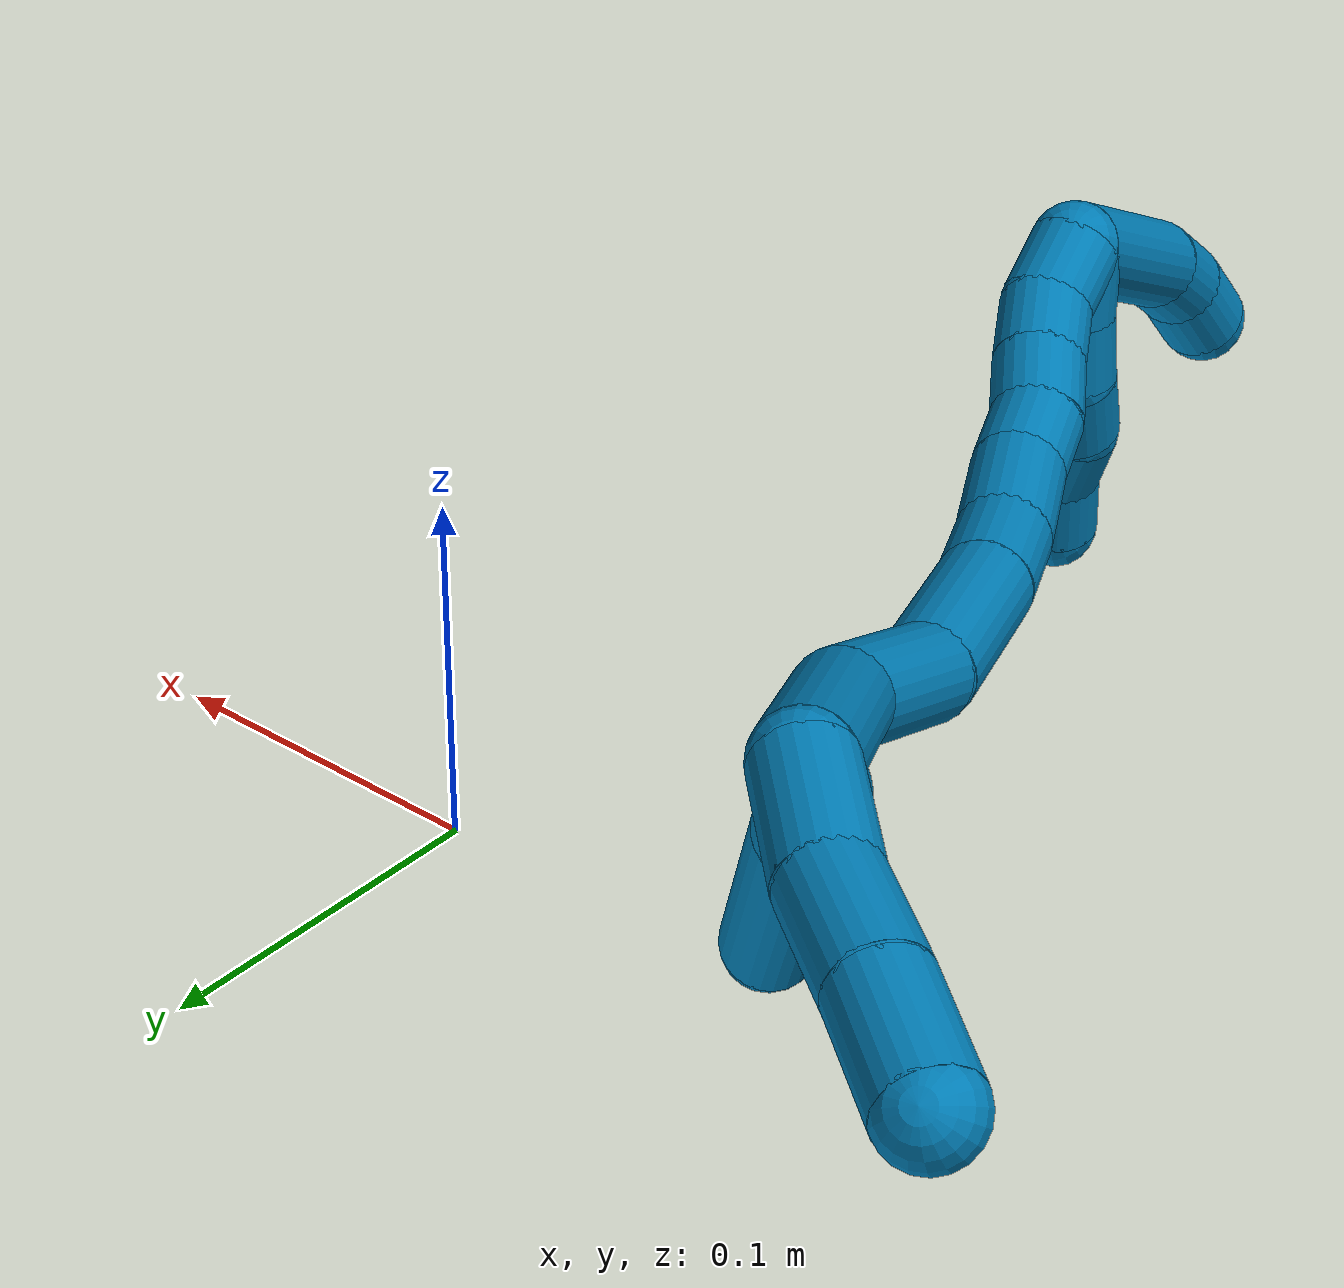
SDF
<sdf version="1.7">
 <world name="default">
  <model name="9">
   <static>0</static>
   <link name="9">
    <collision name="collision-cylinder-e_1_2_8">
     <pose>0.001467 0.00166 -0.017837 -3.04879 0.081726 -1.44385</pose>
     <geometry><cylinder><radius>0.0125</radius><length>0.035947</length></cylinder></geometry>
     <surface>
      <friction><ode><mu>1.16</mu><mu2>1.16</mu2><slip1>0</slip1><slip2>0</slip2></ode></friction>
      <contact><ode><kp>1e+06</kp><kd>1</kd><max_vel>0</max_vel><min_depth>0.001</min_depth></ode></contact>
     </surface>
    </collision>
    <visual name="visual-cylinder-e_1_2_8">
     <pose>0.001467 0.00166 -0.017837 -3.04879 0.081726 -1.44385</pose>
     <geometry><cylinder><radius>0.0125</radius><length>0.035947</length></cylinder></geometry>
     <material><ambient>0 0.490196 0.709804 1</ambient></material>
    </visual>
    <collision name="collision-cylinder-e_2_8_9">
     <pose>0.004566 0.007038 -0.047316 -2.83253 0.132691 -0.806336</pose>
     <geometry><cylinder><radius>0.0125</radius><length>0.024661</length></cylinder></geometry>
     <surface>
      <friction><ode><mu>1.16</mu><mu2>1.16</mu2><slip1>0</slip1><slip2>0</slip2></ode></friction>
      <contact><ode><kp>1e+06</kp><kd>1</kd><max_vel>0</max_vel><min_depth>0.001</min_depth></ode></contact>
     </surface>
    </collision>
    <visual name="visual-cylinder-e_2_8_9">
     <pose>0.004566 0.007038 -0.047316 -2.83253 0.132691 -0.806336</pose>
     <geometry><cylinder><radius>0.0125</radius><length>0.024661</length></cylinder></geometry>
     <material><ambient>0 0.490196 0.709804 1</ambient></material>
    </visual>
    <collision name="collision-cylinder-e_3_9_6">
     <pose>0.012491 0.024265 -0.101097 -2.83134 0.141276 -0.849771</pose>
     <geometry><cylinder><radius>0.0125</radius><length>0.089392</length></cylinder></geometry>
     <surface>
      <friction><ode><mu>1.16</mu><mu2>1.16</mu2><slip1>0</slip1><slip2>0</slip2></ode></friction>
      <contact><ode><kp>1e+06</kp><kd>1</kd><max_vel>0</max_vel><min_depth>0.001</min_depth></ode></contact>
     </surface>
    </collision>
    <visual name="visual-cylinder-e_3_9_6">
     <pose>0.012491 0.024265 -0.101097 -2.83134 0.141276 -0.849771</pose>
     <geometry><cylinder><radius>0.0125</radius><length>0.089392</length></cylinder></geometry>
     <material><ambient>0 0.490196 0.709804 1</ambient></material>
    </visual>
    <collision name="collision-cylinder-e_1_2_10">
     <pose>-0.011561 0.008721 0.009115 -0.763309 -0.741862 0.309685</pose>
     <geometry><cylinder><radius>0.0125</radius><length>0.034222</length></cylinder></geometry>
     <surface>
      <friction><ode><mu>1.16</mu><mu2>1.16</mu2><slip1>0</slip1><slip2>0</slip2></ode></friction>
      <contact><ode><kp>1e+06</kp><kd>1</kd><max_vel>0</max_vel><min_depth>0.001</min_depth></ode></contact>
     </surface>
    </collision>
    <visual name="visual-cylinder-e_1_2_10">
     <pose>-0.011561 0.008721 0.009115 -0.763309 -0.741862 0.309685</pose>
     <geometry><cylinder><radius>0.0125</radius><length>0.034222</length></cylinder></geometry>
     <material><ambient>0 0.490196 0.709804 1</ambient></material>
    </visual>
    <collision name="collision-cylinder-e_2_10_11">
     <pose>-0.035337 0.023171 0.027574 -0.550053 -0.839387 0.2505</pose>
     <geometry><cylinder><radius>0.0125</radius><length>0.032825</length></cylinder></geometry>
     <surface>
      <friction><ode><mu>1.16</mu><mu2>1.16</mu2><slip1>0</slip1><slip2>0</slip2></ode></friction>
      <contact><ode><kp>1e+06</kp><kd>1</kd><max_vel>0</max_vel><min_depth>0.001</min_depth></ode></contact>
     </surface>
    </collision>
    <visual name="visual-cylinder-e_2_10_11">
     <pose>-0.035337 0.023171 0.027574 -0.550053 -0.839387 0.2505</pose>
     <geometry><cylinder><radius>0.0125</radius><length>0.032825</length></cylinder></geometry>
     <material><ambient>0 0.490196 0.709804 1</ambient></material>
    </visual>
    <collision name="collision-cylinder-e_3_11_5">
     <pose>-0.05991 0.035568 0.045541 -0.658193 -0.848111 0.305943</pose>
     <geometry><cylinder><radius>0.0125</radius><length>0.032953</length></cylinder></geometry>
     <surface>
      <friction><ode><mu>1.16</mu><mu2>1.16</mu2><slip1>0</slip1><slip2>0</slip2></ode></friction>
      <contact><ode><kp>1e+06</kp><kd>1</kd><max_vel>0</max_vel><min_depth>0.001</min_depth></ode></contact>
     </surface>
    </collision>
    <visual name="visual-cylinder-e_3_11_5">
     <pose>-0.05991 0.035568 0.045541 -0.658193 -0.848111 0.305943</pose>
     <geometry><cylinder><radius>0.0125</radius><length>0.032953</length></cylinder></geometry>
     <material><ambient>0 0.490196 0.709804 1</ambient></material>
    </visual>
    <collision name="collision-cylinder-e_1_2_12">
     <pose>0.008474 -0.008884 -0.030909 2.86172 0.257628 1.48708</pose>
     <geometry><cylinder><radius>0.0125</radius><length>0.066517</length></cylinder></geometry>
     <surface>
      <friction><ode><mu>1.16</mu><mu2>1.16</mu2><slip1>0</slip1><slip2>0</slip2></ode></friction>
      <contact><ode><kp>1e+06</kp><kd>1</kd><max_vel>0</max_vel><min_depth>0.001</min_depth></ode></contact>
     </surface>
    </collision>
    <visual name="visual-cylinder-e_1_2_12">
     <pose>0.008474 -0.008884 -0.030909 2.86172 0.257628 1.48708</pose>
     <geometry><cylinder><radius>0.0125</radius><length>0.066517</length></cylinder></geometry>
     <material><ambient>0 0.490196 0.709804 1</ambient></material>
    </visual>
    <collision name="collision-cylinder-e_2_12_13">
     <pose>0.01554 -0.026706 -0.082003 2.72471 -0.063691 -0.298974</pose>
     <geometry><cylinder><radius>0.0125</radius><length>0.04424</length></cylinder></geometry>
     <surface>
      <friction><ode><mu>1.16</mu><mu2>1.16</mu2><slip1>0</slip1><slip2>0</slip2></ode></friction>
      <contact><ode><kp>1e+06</kp><kd>1</kd><max_vel>0</max_vel><min_depth>0.001</min_depth></ode></contact>
     </surface>
    </collision>
    <visual name="visual-cylinder-e_2_12_13">
     <pose>0.01554 -0.026706 -0.082003 2.72471 -0.063691 -0.298974</pose>
     <geometry><cylinder><radius>0.0125</radius><length>0.04424</length></cylinder></geometry>
     <material><ambient>0 0.490196 0.709804 1</ambient></material>
    </visual>
    <collision name="collision-cylinder-e_3_13_14">
     <pose>0.0193 -0.049786 -0.123057 2.54606 0.202205 0.63852</pose>
     <geometry><cylinder><radius>0.0125</radius><length>0.051467</length></cylinder></geometry>
     <surface>
      <friction><ode><mu>1.16</mu><mu2>1.16</mu2><slip1>0</slip1><slip2>0</slip2></ode></friction>
      <contact><ode><kp>1e+06</kp><kd>1</kd><max_vel>0</max_vel><min_depth>0.001</min_depth></ode></contact>
     </surface>
    </collision>
    <visual name="visual-cylinder-e_3_13_14">
     <pose>0.0193 -0.049786 -0.123057 2.54606 0.202205 0.63852</pose>
     <geometry><cylinder><radius>0.0125</radius><length>0.051467</length></cylinder></geometry>
     <material><ambient>0 0.490196 0.709804 1</ambient></material>
    </visual>
    <collision name="collision-cylinder-e_4_14_15">
     <pose>0.028498 -0.071354 -0.154178 2.51459 0.308225 0.893693</pose>
     <geometry><cylinder><radius>0.0125</radius><length>0.026572</length></cylinder></geometry>
     <surface>
      <friction><ode><mu>1.16</mu><mu2>1.16</mu2><slip1>0</slip1><slip2>0</slip2></ode></friction>
      <contact><ode><kp>1e+06</kp><kd>1</kd><max_vel>0</max_vel><min_depth>0.001</min_depth></ode></contact>
     </surface>
    </collision>
    <visual name="visual-cylinder-e_4_14_15">
     <pose>0.028498 -0.071354 -0.154178 2.51459 0.308225 0.893693</pose>
     <geometry><cylinder><radius>0.0125</radius><length>0.026572</length></cylinder></geometry>
     <material><ambient>0 0.490196 0.709804 1</ambient></material>
    </visual>
    <collision name="collision-cylinder-e_5_15_16">
     <pose>0.03833 -0.088064 -0.174358 2.38983 0.403407 0.956122</pose>
     <geometry><cylinder><radius>0.0125</radius><length>0.029554</length></cylinder></geometry>
     <surface>
      <friction><ode><mu>1.16</mu><mu2>1.16</mu2><slip1>0</slip1><slip2>0</slip2></ode></friction>
      <contact><ode><kp>1e+06</kp><kd>1</kd><max_vel>0</max_vel><min_depth>0.001</min_depth></ode></contact>
     </surface>
    </collision>
    <visual name="visual-cylinder-e_5_15_16">
     <pose>0.03833 -0.088064 -0.174358 2.38983 0.403407 0.956122</pose>
     <geometry><cylinder><radius>0.0125</radius><length>0.029554</length></cylinder></geometry>
     <material><ambient>0 0.490196 0.709804 1</ambient></material>
    </visual>
    <collision name="collision-cylinder-e_6_16_17">
     <pose>0.047434 -0.104867 -0.190544 2.26478 0.325573 0.673908</pose>
     <geometry><cylinder><radius>0.0125</radius><length>0.020654</length></cylinder></geometry>
     <surface>
      <friction><ode><mu>1.16</mu><mu2>1.16</mu2><slip1>0</slip1><slip2>0</slip2></ode></friction>
      <contact><ode><kp>1e+06</kp><kd>1</kd><max_vel>0</max_vel><min_depth>0.001</min_depth></ode></contact>
     </surface>
    </collision>
    <visual name="visual-cylinder-e_6_16_17">
     <pose>0.047434 -0.104867 -0.190544 2.26478 0.325573 0.673908</pose>
     <geometry><cylinder><radius>0.0125</radius><length>0.020654</length></cylinder></geometry>
     <material><ambient>0 0.490196 0.709804 1</ambient></material>
    </visual>
    <collision name="collision-cylinder-e_7_17_18">
     <pose>0.056108 -0.11967 -0.201617 2.155 0.551597 0.969097</pose>
     <geometry><cylinder><radius>0.0125</radius><length>0.020498</length></cylinder></geometry>
     <surface>
      <friction><ode><mu>1.16</mu><mu2>1.16</mu2><slip1>0</slip1><slip2>0</slip2></ode></friction>
      <contact><ode><kp>1e+06</kp><kd>1</kd><max_vel>0</max_vel><min_depth>0.001</min_depth></ode></contact>
     </surface>
    </collision>
    <visual name="visual-cylinder-e_7_17_18">
     <pose>0.056108 -0.11967 -0.201617 2.155 0.551597 0.969097</pose>
     <geometry><cylinder><radius>0.0125</radius><length>0.020498</length></cylinder></geometry>
     <material><ambient>0 0.490196 0.709804 1</ambient></material>
    </visual>
    <collision name="collision-cylinder-e_8_18_19">
     <pose>0.066287 -0.134609 -0.21085 2.09413 0.49811 0.829658</pose>
     <geometry><cylinder><radius>0.0125</radius><length>0.020128</length></cylinder></geometry>
     <surface>
      <friction><ode><mu>1.16</mu><mu2>1.16</mu2><slip1>0</slip1><slip2>0</slip2></ode></friction>
      <contact><ode><kp>1e+06</kp><kd>1</kd><max_vel>0</max_vel><min_depth>0.001</min_depth></ode></contact>
     </surface>
    </collision>
    <visual name="visual-cylinder-e_8_18_19">
     <pose>0.066287 -0.134609 -0.21085 2.09413 0.49811 0.829658</pose>
     <geometry><cylinder><radius>0.0125</radius><length>0.020128</length></cylinder></geometry>
     <material><ambient>0 0.490196 0.709804 1</ambient></material>
    </visual>
    <collision name="collision-cylinder-e_9_19_1">
     <pose>0.073236 -0.151682 -0.218509 1.90231 0.211749 0.295769</pose>
     <geometry><cylinder><radius>0.0125</radius><length>0.02037</length></cylinder></geometry>
     <surface>
      <friction><ode><mu>1.16</mu><mu2>1.16</mu2><slip1>0</slip1><slip2>0</slip2></ode></friction>
      <contact><ode><kp>1e+06</kp><kd>1</kd><max_vel>0</max_vel><min_depth>0.001</min_depth></ode></contact>
     </surface>
    </collision>
    <visual name="visual-cylinder-e_9_19_1">
     <pose>0.073236 -0.151682 -0.218509 1.90231 0.211749 0.295769</pose>
     <geometry><cylinder><radius>0.0125</radius><length>0.02037</length></cylinder></geometry>
     <material><ambient>0 0.490196 0.709804 1</ambient></material>
    </visual>
    <collision name="collision-cylinder-e_1_1_20">
     <pose>0.072202 -0.169943 -0.250084 2.83898 -0.106552 -0.672907</pose>
     <geometry><cylinder><radius>0.0125</radius><length>0.059703</length></cylinder></geometry>
     <surface>
      <friction><ode><mu>1.16</mu><mu2>1.16</mu2><slip1>0</slip1><slip2>0</slip2></ode></friction>
      <contact><ode><kp>1e+06</kp><kd>1</kd><max_vel>0</max_vel><min_depth>0.001</min_depth></ode></contact>
     </surface>
    </collision>
    <visual name="visual-cylinder-e_1_1_20">
     <pose>0.072202 -0.169943 -0.250084 2.83898 -0.106552 -0.672907</pose>
     <geometry><cylinder><radius>0.0125</radius><length>0.059703</length></cylinder></geometry>
     <material><ambient>0 0.490196 0.709804 1</ambient></material>
    </visual>
    <collision name="collision-cylinder-e_2_20_21">
     <pose>0.066905 -0.179939 -0.288147 3.02391 -0.213288 -2.13547</pose>
     <geometry><cylinder><radius>0.0125</radius><length>0.020048</length></cylinder></geometry>
     <surface>
      <friction><ode><mu>1.16</mu><mu2>1.16</mu2><slip1>0</slip1><slip2>0</slip2></ode></friction>
      <contact><ode><kp>1e+06</kp><kd>1</kd><max_vel>0</max_vel><min_depth>0.001</min_depth></ode></contact>
     </surface>
    </collision>
    <visual name="visual-cylinder-e_2_20_21">
     <pose>0.066905 -0.179939 -0.288147 3.02391 -0.213288 -2.13547</pose>
     <geometry><cylinder><radius>0.0125</radius><length>0.020048</length></cylinder></geometry>
     <material><ambient>0 0.490196 0.709804 1</ambient></material>
    </visual>
    <collision name="collision-cylinder-e_3_21_4">
     <pose>0.061339 -0.180248 -0.307359 -3.05306 -0.347124 2.64666</pose>
     <geometry><cylinder><radius>0.0125</radius><length>0.020248</length></cylinder></geometry>
     <surface>
      <friction><ode><mu>1.16</mu><mu2>1.16</mu2><slip1>0</slip1><slip2>0</slip2></ode></friction>
      <contact><ode><kp>1e+06</kp><kd>1</kd><max_vel>0</max_vel><min_depth>0.001</min_depth></ode></contact>
     </surface>
    </collision>
    <visual name="visual-cylinder-e_3_21_4">
     <pose>0.061339 -0.180248 -0.307359 -3.05306 -0.347124 2.64666</pose>
     <geometry><cylinder><radius>0.0125</radius><length>0.020248</length></cylinder></geometry>
     <material><ambient>0 0.490196 0.709804 1</ambient></material>
    </visual>
    <collision name="collision-cylinder-e_1_1_22">
     <pose>0.072507 -0.154087 -0.228279 -2.32064 -0.291045 0.64967</pose>
     <geometry><cylinder><radius>0.0125</radius><length>0.02</length></cylinder></geometry>
     <surface>
      <friction><ode><mu>1.16</mu><mu2>1.16</mu2><slip1>0</slip1><slip2>0</slip2></ode></friction>
      <contact><ode><kp>1e+06</kp><kd>1</kd><max_vel>0</max_vel><min_depth>0.001</min_depth></ode></contact>
     </surface>
    </collision>
    <visual name="visual-cylinder-e_1_1_22">
     <pose>0.072507 -0.154087 -0.228279 -2.32064 -0.291045 0.64967</pose>
     <geometry><cylinder><radius>0.0125</radius><length>0.02</length></cylinder></geometry>
     <material><ambient>0 0.490196 0.709804 1</ambient></material>
    </visual>
    <collision name="collision-cylinder-e_2_22_23">
     <pose>0.066287 -0.140792 -0.241826 -2.41127 -0.341637 0.847714</pose>
     <geometry><cylinder><radius>0.0125</radius><length>0.02</length></cylinder></geometry>
     <surface>
      <friction><ode><mu>1.16</mu><mu2>1.16</mu2><slip1>0</slip1><slip2>0</slip2></ode></friction>
      <contact><ode><kp>1e+06</kp><kd>1</kd><max_vel>0</max_vel><min_depth>0.001</min_depth></ode></contact>
     </surface>
    </collision>
    <visual name="visual-cylinder-e_2_22_23">
     <pose>0.066287 -0.140792 -0.241826 -2.41127 -0.341637 0.847714</pose>
     <geometry><cylinder><radius>0.0125</radius><length>0.02</length></cylinder></geometry>
     <material><ambient>0 0.490196 0.709804 1</ambient></material>
    </visual>
    <collision name="collision-cylinder-e_3_23_24">
     <pose>0.06073 -0.130129 -0.257561 -2.67615 -0.222508 0.88091</pose>
     <geometry><cylinder><radius>0.0125</radius><length>0.02</length></cylinder></geometry>
     <surface>
      <friction><ode><mu>1.16</mu><mu2>1.16</mu2><slip1>0</slip1><slip2>0</slip2></ode></friction>
      <contact><ode><kp>1e+06</kp><kd>1</kd><max_vel>0</max_vel><min_depth>0.001</min_depth></ode></contact>
     </surface>
    </collision>
    <visual name="visual-cylinder-e_3_23_24">
     <pose>0.06073 -0.130129 -0.257561 -2.67615 -0.222508 0.88091</pose>
     <geometry><cylinder><radius>0.0125</radius><length>0.02</length></cylinder></geometry>
     <material><ambient>0 0.490196 0.709804 1</ambient></material>
    </visual>
    <collision name="collision-cylinder-e_4_24_25">
     <pose>0.059259 -0.120079 -0.27448 -2.53661 0.073677 -0.235113</pose>
     <geometry><cylinder><radius>0.0125</radius><length>0.02</length></cylinder></geometry>
     <surface>
      <friction><ode><mu>1.16</mu><mu2>1.16</mu2><slip1>0</slip1><slip2>0</slip2></ode></friction>
      <contact><ode><kp>1e+06</kp><kd>1</kd><max_vel>0</max_vel><min_depth>0.001</min_depth></ode></contact>
     </surface>
    </collision>
    <visual name="visual-cylinder-e_4_24_25">
     <pose>0.059259 -0.120079 -0.27448 -2.53661 0.073677 -0.235113</pose>
     <geometry><cylinder><radius>0.0125</radius><length>0.02</length></cylinder></geometry>
     <material><ambient>0 0.490196 0.709804 1</ambient></material>
    </visual>
    <collision name="collision-cylinder-e_5_25_3">
     <pose>0.057916 -0.108837 -0.290723 -2.53573 -0.20952 0.649037</pose>
     <geometry><cylinder><radius>0.0125</radius><length>0.02</length></cylinder></geometry>
     <surface>
      <friction><ode><mu>1.16</mu><mu2>1.16</mu2><slip1>0</slip1><slip2>0</slip2></ode></friction>
      <contact><ode><kp>1e+06</kp><kd>1</kd><max_vel>0</max_vel><min_depth>0.001</min_depth></ode></contact>
     </surface>
    </collision>
    <visual name="visual-cylinder-e_5_25_3">
     <pose>0.057916 -0.108837 -0.290723 -2.53573 -0.20952 0.649037</pose>
     <geometry><cylinder><radius>0.0125</radius><length>0.02</length></cylinder></geometry>
     <material><ambient>0 0.490196 0.709804 1</ambient></material>
    </visual>
    <collision name="collision-sphere-3">
     <pose>0.055836 -0.103267 -0.298764 0 -0 0</pose>
     <geometry><sphere><radius>0.0125</radius></sphere></geometry>
     <surface>
      <friction><ode><mu>1.16</mu><mu2>1.16</mu2><slip1>0</slip1><slip2>0</slip2></ode></friction>
      <contact><ode><kp>1e+06</kp><kd>1</kd><max_vel>0</max_vel><min_depth>0.001</min_depth></ode></contact>
     </surface>
    </collision>
    <visual name="visual-sphere-3">
     <pose>0.055836 -0.103267 -0.298764 0 -0 0</pose>
     <geometry><sphere><radius>0.0125</radius></sphere></geometry>
     <material><ambient>0 0.490196 0.709804 1</ambient></material>
    </visual>
    <collision name="collision-sphere-25">
     <pose>0.059996 -0.114407 -0.282683 0 -0 0</pose>
     <geometry><sphere><radius>0.0125</radius></sphere></geometry>
     <surface>
      <friction><ode><mu>1.16</mu><mu2>1.16</mu2><slip1>0</slip1><slip2>0</slip2></ode></friction>
      <contact><ode><kp>1e+06</kp><kd>1</kd><max_vel>0</max_vel><min_depth>0.001</min_depth></ode></contact>
     </surface>
    </collision>
    <visual name="visual-sphere-25">
     <pose>0.059996 -0.114407 -0.282683 0 -0 0</pose>
     <geometry><sphere><radius>0.0125</radius></sphere></geometry>
     <material><ambient>0 0.490196 0.709804 1</ambient></material>
    </visual>
    <collision name="collision-sphere-24">
     <pose>0.058523 -0.125751 -0.266277 0 -0 0</pose>
     <geometry><sphere><radius>0.0125</radius></sphere></geometry>
     <surface>
      <friction><ode><mu>1.16</mu><mu2>1.16</mu2><slip1>0</slip1><slip2>0</slip2></ode></friction>
      <contact><ode><kp>1e+06</kp><kd>1</kd><max_vel>0</max_vel><min_depth>0.001</min_depth></ode></contact>
     </surface>
    </collision>
    <visual name="visual-sphere-24">
     <pose>0.058523 -0.125751 -0.266277 0 -0 0</pose>
     <geometry><sphere><radius>0.0125</radius></sphere></geometry>
     <material><ambient>0 0.490196 0.709804 1</ambient></material>
    </visual>
    <collision name="collision-sphere-23">
     <pose>0.062937 -0.134506 -0.248845 0 -0 0</pose>
     <geometry><sphere><radius>0.0125</radius></sphere></geometry>
     <surface>
      <friction><ode><mu>1.16</mu><mu2>1.16</mu2><slip1>0</slip1><slip2>0</slip2></ode></friction>
      <contact><ode><kp>1e+06</kp><kd>1</kd><max_vel>0</max_vel><min_depth>0.001</min_depth></ode></contact>
     </surface>
    </collision>
    <visual name="visual-sphere-23">
     <pose>0.062937 -0.134506 -0.248845 0 -0 0</pose>
     <geometry><sphere><radius>0.0125</radius></sphere></geometry>
     <material><ambient>0 0.490196 0.709804 1</ambient></material>
    </visual>
    <collision name="collision-sphere-22">
     <pose>0.069637 -0.147077 -0.234807 0 -0 0</pose>
     <geometry><sphere><radius>0.0125</radius></sphere></geometry>
     <surface>
      <friction><ode><mu>1.16</mu><mu2>1.16</mu2><slip1>0</slip1><slip2>0</slip2></ode></friction>
      <contact><ode><kp>1e+06</kp><kd>1</kd><max_vel>0</max_vel><min_depth>0.001</min_depth></ode></contact>
     </surface>
    </collision>
    <visual name="visual-sphere-22">
     <pose>0.069637 -0.147077 -0.234807 0 -0 0</pose>
     <geometry><sphere><radius>0.0125</radius></sphere></geometry>
     <material><ambient>0 0.490196 0.709804 1</ambient></material>
    </visual>
    <collision name="collision-sphere-4">
     <pose>0.057895 -0.179406 -0.316842 0 -0 0</pose>
     <geometry><sphere><radius>0.0125</radius></sphere></geometry>
     <surface>
      <friction><ode><mu>1.16</mu><mu2>1.16</mu2><slip1>0</slip1><slip2>0</slip2></ode></friction>
      <contact><ode><kp>1e+06</kp><kd>1</kd><max_vel>0</max_vel><min_depth>0.001</min_depth></ode></contact>
     </surface>
    </collision>
    <visual name="visual-sphere-4">
     <pose>0.057895 -0.179406 -0.316842 0 -0 0</pose>
     <geometry><sphere><radius>0.0125</radius></sphere></geometry>
     <material><ambient>0 0.490196 0.709804 1</ambient></material>
    </visual>
    <collision name="collision-sphere-21">
     <pose>0.064783 -0.181089 -0.297876 0 -0 0</pose>
     <geometry><sphere><radius>0.0125</radius></sphere></geometry>
     <surface>
      <friction><ode><mu>1.16</mu><mu2>1.16</mu2><slip1>0</slip1><slip2>0</slip2></ode></friction>
      <contact><ode><kp>1e+06</kp><kd>1</kd><max_vel>0</max_vel><min_depth>0.001</min_depth></ode></contact>
     </surface>
    </collision>
    <visual name="visual-sphere-21">
     <pose>0.064783 -0.181089 -0.297876 0 -0 0</pose>
     <geometry><sphere><radius>0.0125</radius></sphere></geometry>
     <material><ambient>0 0.490196 0.709804 1</ambient></material>
    </visual>
    <collision name="collision-sphere-20">
     <pose>0.069027 -0.178789 -0.278417 0 -0 0</pose>
     <geometry><sphere><radius>0.0125</radius></sphere></geometry>
     <surface>
      <friction><ode><mu>1.16</mu><mu2>1.16</mu2><slip1>0</slip1><slip2>0</slip2></ode></friction>
      <contact><ode><kp>1e+06</kp><kd>1</kd><max_vel>0</max_vel><min_depth>0.001</min_depth></ode></contact>
     </surface>
    </collision>
    <visual name="visual-sphere-20">
     <pose>0.069027 -0.178789 -0.278417 0 -0 0</pose>
     <geometry><sphere><radius>0.0125</radius></sphere></geometry>
     <material><ambient>0 0.490196 0.709804 1</ambient></material>
    </visual>
    <collision name="collision-sphere-11">
     <pose>-0.047552 0.028902 0.03692 0 -0 0</pose>
     <geometry><sphere><radius>0.0125</radius></sphere></geometry>
     <surface>
      <friction><ode><mu>1.16</mu><mu2>1.16</mu2><slip1>0</slip1><slip2>0</slip2></ode></friction>
      <contact><ode><kp>1e+06</kp><kd>1</kd><max_vel>0</max_vel><min_depth>0.001</min_depth></ode></contact>
     </surface>
    </collision>
    <visual name="visual-sphere-11">
     <pose>-0.047552 0.028902 0.03692 0 -0 0</pose>
     <geometry><sphere><radius>0.0125</radius></sphere></geometry>
     <material><ambient>0 0.490196 0.709804 1</ambient></material>
    </visual>
    <collision name="collision-sphere-10">
     <pose>-0.023122 0.017441 0.018229 0 -0 0</pose>
     <geometry><sphere><radius>0.0125</radius></sphere></geometry>
     <surface>
      <friction><ode><mu>1.16</mu><mu2>1.16</mu2><slip1>0</slip1><slip2>0</slip2></ode></friction>
      <contact><ode><kp>1e+06</kp><kd>1</kd><max_vel>0</max_vel><min_depth>0.001</min_depth></ode></contact>
     </surface>
    </collision>
    <visual name="visual-sphere-10">
     <pose>-0.023122 0.017441 0.018229 0 -0 0</pose>
     <geometry><sphere><radius>0.0125</radius></sphere></geometry>
     <material><ambient>0 0.490196 0.709804 1</ambient></material>
    </visual>
    <collision name="collision-sphere-6">
     <pose>0.018784 0.037775 -0.143235 0 -0 0</pose>
     <geometry><sphere><radius>0.0125</radius></sphere></geometry>
     <surface>
      <friction><ode><mu>1.16</mu><mu2>1.16</mu2><slip1>0</slip1><slip2>0</slip2></ode></friction>
      <contact><ode><kp>1e+06</kp><kd>1</kd><max_vel>0</max_vel><min_depth>0.001</min_depth></ode></contact>
     </surface>
    </collision>
    <visual name="visual-sphere-6">
     <pose>0.018784 0.037775 -0.143235 0 -0 0</pose>
     <geometry><sphere><radius>0.0125</radius></sphere></geometry>
     <material><ambient>0 0.490196 0.709804 1</ambient></material>
    </visual>
    <collision name="collision-sphere-9">
     <pose>0.006197 0.010755 -0.058959 0 -0 0</pose>
     <geometry><sphere><radius>0.0125</radius></sphere></geometry>
     <surface>
      <friction><ode><mu>1.16</mu><mu2>1.16</mu2><slip1>0</slip1><slip2>0</slip2></ode></friction>
      <contact><ode><kp>1e+06</kp><kd>1</kd><max_vel>0</max_vel><min_depth>0.001</min_depth></ode></contact>
     </surface>
    </collision>
    <visual name="visual-sphere-9">
     <pose>0.006197 0.010755 -0.058959 0 -0 0</pose>
     <geometry><sphere><radius>0.0125</radius></sphere></geometry>
     <material><ambient>0 0.490196 0.709804 1</ambient></material>
    </visual>
    <collision name="collision-sphere-2">
     <geometry><sphere><radius>0.0125</radius></sphere></geometry>
     <surface>
      <friction><ode><mu>1.16</mu><mu2>1.16</mu2><slip1>0</slip1><slip2>0</slip2></ode></friction>
      <contact><ode><kp>1e+06</kp><kd>1</kd><max_vel>0</max_vel><min_depth>0.001</min_depth></ode></contact>
     </surface>
    </collision>
    <visual name="visual-sphere-2">
     <geometry><sphere><radius>0.0125</radius></sphere></geometry>
     <material><ambient>0 0.490196 0.709804 1</ambient></material>
    </visual>
    <collision name="collision-sphere-19">
     <pose>0.071095 -0.142267 -0.215268 0 -0 0</pose>
     <geometry><sphere><radius>0.0125</radius></sphere></geometry>
     <surface>
      <friction><ode><mu>1.16</mu><mu2>1.16</mu2><slip1>0</slip1><slip2>0</slip2></ode></friction>
      <contact><ode><kp>1e+06</kp><kd>1</kd><max_vel>0</max_vel><min_depth>0.001</min_depth></ode></contact>
     </surface>
    </collision>
    <visual name="visual-sphere-19">
     <pose>0.071095 -0.142267 -0.215268 0 -0 0</pose>
     <geometry><sphere><radius>0.0125</radius></sphere></geometry>
     <material><ambient>0 0.490196 0.709804 1</ambient></material>
    </visual>
    <collision name="collision-sphere-8">
     <pose>0.002935 0.00332 -0.035673 0 -0 0</pose>
     <geometry><sphere><radius>0.0125</radius></sphere></geometry>
     <surface>
      <friction><ode><mu>1.16</mu><mu2>1.16</mu2><slip1>0</slip1><slip2>0</slip2></ode></friction>
      <contact><ode><kp>1e+06</kp><kd>1</kd><max_vel>0</max_vel><min_depth>0.001</min_depth></ode></contact>
     </surface>
    </collision>
    <visual name="visual-sphere-8">
     <pose>0.002935 0.00332 -0.035673 0 -0 0</pose>
     <geometry><sphere><radius>0.0125</radius></sphere></geometry>
     <material><ambient>0 0.490196 0.709804 1</ambient></material>
    </visual>
    <collision name="collision-sphere-5">
     <pose>-0.072268 0.042234 0.054162 0 -0 0</pose>
     <geometry><sphere><radius>0.0125</radius></sphere></geometry>
     <surface>
      <friction><ode><mu>1.16</mu><mu2>1.16</mu2><slip1>0</slip1><slip2>0</slip2></ode></friction>
      <contact><ode><kp>1e+06</kp><kd>1</kd><max_vel>0</max_vel><min_depth>0.001</min_depth></ode></contact>
     </surface>
    </collision>
    <visual name="visual-sphere-5">
     <pose>-0.072268 0.042234 0.054162 0 -0 0</pose>
     <geometry><sphere><radius>0.0125</radius></sphere></geometry>
     <material><ambient>0 0.490196 0.709804 1</ambient></material>
    </visual>
    <collision name="collision-sphere-12">
     <pose>0.016948 -0.017768 -0.061819 0 -0 0</pose>
     <geometry><sphere><radius>0.0125</radius></sphere></geometry>
     <surface>
      <friction><ode><mu>1.16</mu><mu2>1.16</mu2><slip1>0</slip1><slip2>0</slip2></ode></friction>
      <contact><ode><kp>1e+06</kp><kd>1</kd><max_vel>0</max_vel><min_depth>0.001</min_depth></ode></contact>
     </surface>
    </collision>
    <visual name="visual-sphere-12">
     <pose>0.016948 -0.017768 -0.061819 0 -0 0</pose>
     <geometry><sphere><radius>0.0125</radius></sphere></geometry>
     <material><ambient>0 0.490196 0.709804 1</ambient></material>
    </visual>
    <collision name="collision-sphere-13">
     <pose>0.014132 -0.035645 -0.102188 0 -0 0</pose>
     <geometry><sphere><radius>0.0125</radius></sphere></geometry>
     <surface>
      <friction><ode><mu>1.16</mu><mu2>1.16</mu2><slip1>0</slip1><slip2>0</slip2></ode></friction>
      <contact><ode><kp>1e+06</kp><kd>1</kd><max_vel>0</max_vel><min_depth>0.001</min_depth></ode></contact>
     </surface>
    </collision>
    <visual name="visual-sphere-13">
     <pose>0.014132 -0.035645 -0.102188 0 -0 0</pose>
     <geometry><sphere><radius>0.0125</radius></sphere></geometry>
     <material><ambient>0 0.490196 0.709804 1</ambient></material>
    </visual>
    <collision name="collision-sphere-14">
     <pose>0.024468 -0.063927 -0.143927 0 -0 0</pose>
     <geometry><sphere><radius>0.0125</radius></sphere></geometry>
     <surface>
      <friction><ode><mu>1.16</mu><mu2>1.16</mu2><slip1>0</slip1><slip2>0</slip2></ode></friction>
      <contact><ode><kp>1e+06</kp><kd>1</kd><max_vel>0</max_vel><min_depth>0.001</min_depth></ode></contact>
     </surface>
    </collision>
    <visual name="visual-sphere-14">
     <pose>0.024468 -0.063927 -0.143927 0 -0 0</pose>
     <geometry><sphere><radius>0.0125</radius></sphere></geometry>
     <material><ambient>0 0.490196 0.709804 1</ambient></material>
    </visual>
    <collision name="collision-sphere-15">
     <pose>0.032529 -0.078782 -0.16443 0 -0 0</pose>
     <geometry><sphere><radius>0.0125</radius></sphere></geometry>
     <surface>
      <friction><ode><mu>1.16</mu><mu2>1.16</mu2><slip1>0</slip1><slip2>0</slip2></ode></friction>
      <contact><ode><kp>1e+06</kp><kd>1</kd><max_vel>0</max_vel><min_depth>0.001</min_depth></ode></contact>
     </surface>
    </collision>
    <visual name="visual-sphere-15">
     <pose>0.032529 -0.078782 -0.16443 0 -0 0</pose>
     <geometry><sphere><radius>0.0125</radius></sphere></geometry>
     <material><ambient>0 0.490196 0.709804 1</ambient></material>
    </visual>
    <collision name="collision-sphere-16">
     <pose>0.04413 -0.097345 -0.184286 0 -0 0</pose>
     <geometry><sphere><radius>0.0125</radius></sphere></geometry>
     <surface>
      <friction><ode><mu>1.16</mu><mu2>1.16</mu2><slip1>0</slip1><slip2>0</slip2></ode></friction>
      <contact><ode><kp>1e+06</kp><kd>1</kd><max_vel>0</max_vel><min_depth>0.001</min_depth></ode></contact>
     </surface>
    </collision>
    <visual name="visual-sphere-16">
     <pose>0.04413 -0.097345 -0.184286 0 -0 0</pose>
     <geometry><sphere><radius>0.0125</radius></sphere></geometry>
     <material><ambient>0 0.490196 0.709804 1</ambient></material>
    </visual>
    <collision name="collision-sphere-17">
     <pose>0.050737 -0.112388 -0.196802 0 -0 0</pose>
     <geometry><sphere><radius>0.0125</radius></sphere></geometry>
     <surface>
      <friction><ode><mu>1.16</mu><mu2>1.16</mu2><slip1>0</slip1><slip2>0</slip2></ode></friction>
      <contact><ode><kp>1e+06</kp><kd>1</kd><max_vel>0</max_vel><min_depth>0.001</min_depth></ode></contact>
     </surface>
    </collision>
    <visual name="visual-sphere-17">
     <pose>0.050737 -0.112388 -0.196802 0 -0 0</pose>
     <geometry><sphere><radius>0.0125</radius></sphere></geometry>
     <material><ambient>0 0.490196 0.709804 1</ambient></material>
    </visual>
    <collision name="collision-sphere-18">
     <pose>0.061479 -0.126951 -0.206431 0 -0 0</pose>
     <geometry><sphere><radius>0.0125</radius></sphere></geometry>
     <surface>
      <friction><ode><mu>1.16</mu><mu2>1.16</mu2><slip1>0</slip1><slip2>0</slip2></ode></friction>
      <contact><ode><kp>1e+06</kp><kd>1</kd><max_vel>0</max_vel><min_depth>0.001</min_depth></ode></contact>
     </surface>
    </collision>
    <visual name="visual-sphere-18">
     <pose>0.061479 -0.126951 -0.206431 0 -0 0</pose>
     <geometry><sphere><radius>0.0125</radius></sphere></geometry>
     <material><ambient>0 0.490196 0.709804 1</ambient></material>
    </visual>
    <collision name="collision-sphere-1">
     <pose>0.075377 -0.161098 -0.22175 0 -0 0</pose>
     <geometry><sphere><radius>0.0125</radius></sphere></geometry>
     <surface>
      <friction><ode><mu>1.16</mu><mu2>1.16</mu2><slip1>0</slip1><slip2>0</slip2></ode></friction>
      <contact><ode><kp>1e+06</kp><kd>1</kd><max_vel>0</max_vel><min_depth>0.001</min_depth></ode></contact>
     </surface>
    </collision>
    <visual name="visual-sphere-1">
     <pose>0.075377 -0.161098 -0.22175 0 -0 0</pose>
     <geometry><sphere><radius>0.0125</radius></sphere></geometry>
     <material><ambient>0 0.490196 0.709804 1</ambient></material>
    </visual>
    <inertial>
     <pose>0.026761 -0.060133 -0.131929 0 -0 0</pose>
     <mass>0.75</mass>
     <inertia>
      <ixx>7.7e-05</ixx>
      <ixy>0</ixy>
      <ixz>0</ixz>
      <iyy>-8.7e-05</iyy>
      <iyz>0</iyz>
      <izz>-4.4e-05</izz>
     </inertia>
    </inertial>
   </link>
   <pose>-0.181028 0.079246 0.143826 -0.787057 -0.298275 0.117328</pose>
  </model>
 </world>
</sdf>
